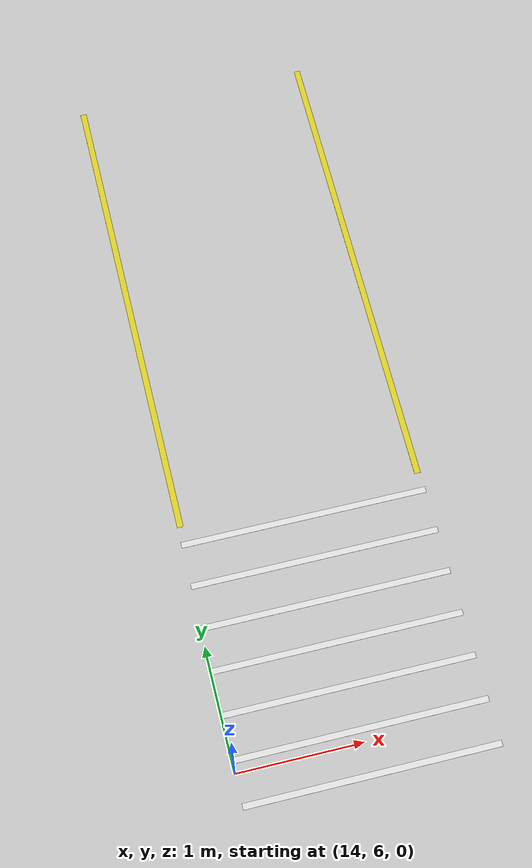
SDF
<sdf version="1.6">
 <world name="default">
  <model name="ground_plane">
   <static>1</static>
   <link name="link">
    <collision name="collision">
     <geometry><plane><normal>0 0 1</normal><size>100 100</size></plane></geometry>
     <surface><friction><ode><mu>100</mu><mu2>50</mu2></ode></friction></surface>
    </collision>
    <visual name="visual">
     <cast_shadows>0</cast_shadows>
     <geometry><plane><normal>0 0 1</normal><size>100 100</size></plane></geometry>
     <material>
      <script><uri>file://media/materials/scripts/gazebo.material</uri><name>Gazebo/Grey</name></script>
     </material>
    </visual>
   </link>
  </model>
  <model name="zebra_crossing_200cmx210cm">
   <link name="link_0">
    <inertial>
     <mass>1</mass>
     <inertia>
      <ixx>0.166667</ixx>
      <ixy>0</ixy>
      <ixz>0</ixz>
      <iyy>0.166667</iyy>
      <iyz>0</iyz>
      <izz>0.166667</izz>
     </inertia>
    </inertial>
    <visual name="ModelPreview_1::link_0::visual_6">
     <pose>-1.05 0 0 0 -0 0</pose>
     <geometry><box><size>0.05 2 0.001</size></box></geometry>
     <material>
      <lighting>1</lighting>
      <script><uri>file://media/materials/scripts/gazebo.material</uri><name>Gazebo/White</name></script>
     </material>
    </visual>
    <visual name="ModelPreview_1::link_0::visual_1">
     <pose>0.35 0 0 0 -0 0</pose>
     <geometry><box><size>0.05 2 0.001</size></box></geometry>
     <material>
      <lighting>1</lighting>
      <script><uri>file://media/materials/scripts/gazebo.material</uri><name>Gazebo/White</name></script>
     </material>
    </visual>
    <visual name="ModelPreview_1::link_0::visual_5">
     <pose>-0.7 0 0 0 -0 0</pose>
     <geometry><box><size>0.05 2 0.001</size></box></geometry>
     <material>
      <lighting>1</lighting>
      <script><uri>file://media/materials/scripts/gazebo.material</uri><name>Gazebo/White</name></script>
     </material>
    </visual>
    <visual name="ModelPreview_1::link_0::visual_3">
     <pose>1.05 0 0 0 -0 0</pose>
     <geometry><box><size>0.05 2 0.001</size></box></geometry>
     <material>
      <lighting>1</lighting>
      <script><uri>file://media/materials/scripts/gazebo.material</uri><name>Gazebo/White</name></script>
     </material>
    </visual>
    <visual name="ModelPreview_1::link_0::visual_2">
     <pose>0.7 0 0 0 -0 0</pose>
     <geometry><box><size>0.05 2 0.001</size></box></geometry>
     <material>
      <lighting>1</lighting>
      <script><uri>file://media/materials/scripts/gazebo.material</uri><name>Gazebo/White</name></script>
     </material>
    </visual>
    <visual name="visual">
     <geometry><box><size>0.05 2 0.001</size></box></geometry>
     <material>
      <lighting>1</lighting>
      <script><uri>file://media/materials/scripts/gazebo.material</uri><name>Gazebo/White</name></script>
     </material>
    </visual>
    <visual name="ModelPreview_1::link_0::visual_4">
     <pose>-0.35 0 0 0 -0 0</pose>
     <geometry><box><size>0.05 2 0.001</size></box></geometry>
     <material>
      <lighting>1</lighting>
      <script><uri>file://media/materials/scripts/gazebo.material</uri><name>Gazebo/White</name></script>
     </material>
    </visual>
    <collision name="collision_2">
     <pose>0.7 0 0 0 -0 0</pose>
     <geometry><box><size>0.05 2 1e-05</size></box></geometry>
     <surface>
      <friction>
       <ode><mu>1</mu><mu2>1</mu2><fdir1>0 0 0</fdir1><slip1>0</slip1><slip2>0</slip2></ode>
       <torsional>
        <coefficient>1</coefficient>
        <patch_radius>0</patch_radius>
        <surface_radius>0</surface_radius>
        <use_patch_radius>1</use_patch_radius>
        <ode><slip>0</slip></ode>
       </torsional>
      </friction>
      <bounce><restitution_coefficient>0</restitution_coefficient><threshold>1e+06</threshold></bounce>
      <contact>
       <collide_without_contact>0</collide_without_contact>
       <collide_without_contact_bitmask>1</collide_without_contact_bitmask>
       <collide_bitmask>1</collide_bitmask>
       <ode>
        <soft_cfm>0</soft_cfm>
        <soft_erp>0.2</soft_erp>
        <kp>1e+13</kp>
        <kd>1</kd>
        <max_vel>0.01</max_vel>
        <min_depth>0</min_depth>
       </ode>
       <bullet>
        <split_impulse>1</split_impulse>
        <split_impulse_penetration_threshold>-0.01</split_impulse_penetration_threshold>
        <soft_cfm>0</soft_cfm>
        <soft_erp>0.2</soft_erp>
        <kp>1e+13</kp>
        <kd>1</kd>
       </bullet>
      </contact>
     </surface>
    </collision>
    <collision name="collision_4">
     <pose>-0.35 0 0 0 -0 0</pose>
     <geometry><box><size>0.05 2 1e-05</size></box></geometry>
     <surface>
      <friction>
       <ode><mu>1</mu><mu2>1</mu2><fdir1>0 0 0</fdir1><slip1>0</slip1><slip2>0</slip2></ode>
       <torsional>
        <coefficient>1</coefficient>
        <patch_radius>0</patch_radius>
        <surface_radius>0</surface_radius>
        <use_patch_radius>1</use_patch_radius>
        <ode><slip>0</slip></ode>
       </torsional>
      </friction>
      <bounce><restitution_coefficient>0</restitution_coefficient><threshold>1e+06</threshold></bounce>
      <contact>
       <collide_without_contact>0</collide_without_contact>
       <collide_without_contact_bitmask>1</collide_without_contact_bitmask>
       <collide_bitmask>1</collide_bitmask>
       <ode>
        <soft_cfm>0</soft_cfm>
        <soft_erp>0.2</soft_erp>
        <kp>1e+13</kp>
        <kd>1</kd>
        <max_vel>0.01</max_vel>
        <min_depth>0</min_depth>
       </ode>
       <bullet>
        <split_impulse>1</split_impulse>
        <split_impulse_penetration_threshold>-0.01</split_impulse_penetration_threshold>
        <soft_cfm>0</soft_cfm>
        <soft_erp>0.2</soft_erp>
        <kp>1e+13</kp>
        <kd>1</kd>
       </bullet>
      </contact>
     </surface>
    </collision>
    <collision name="collision">
     <geometry><box><size>0.05 2 1e-05</size></box></geometry>
     <surface>
      <friction>
       <ode><mu>1</mu><mu2>1</mu2><fdir1>0 0 0</fdir1><slip1>0</slip1><slip2>0</slip2></ode>
       <torsional>
        <coefficient>1</coefficient>
        <patch_radius>0</patch_radius>
        <surface_radius>0</surface_radius>
        <use_patch_radius>1</use_patch_radius>
        <ode><slip>0</slip></ode>
       </torsional>
      </friction>
      <bounce><restitution_coefficient>0</restitution_coefficient><threshold>1e+06</threshold></bounce>
      <contact>
       <collide_without_contact>0</collide_without_contact>
       <collide_without_contact_bitmask>1</collide_without_contact_bitmask>
       <collide_bitmask>1</collide_bitmask>
       <ode>
        <soft_cfm>0</soft_cfm>
        <soft_erp>0.2</soft_erp>
        <kp>1e+13</kp>
        <kd>1</kd>
        <max_vel>0.01</max_vel>
        <min_depth>0</min_depth>
       </ode>
       <bullet>
        <split_impulse>1</split_impulse>
        <split_impulse_penetration_threshold>-0.01</split_impulse_penetration_threshold>
        <soft_cfm>0</soft_cfm>
        <soft_erp>0.2</soft_erp>
        <kp>1e+13</kp>
        <kd>1</kd>
       </bullet>
      </contact>
     </surface>
    </collision>
    <collision name="collision_5">
     <pose>-0.7 0 0 0 -0 0</pose>
     <geometry><box><size>0.05 2 1e-05</size></box></geometry>
     <surface>
      <friction>
       <ode><mu>1</mu><mu2>1</mu2><fdir1>0 0 0</fdir1><slip1>0</slip1><slip2>0</slip2></ode>
       <torsional>
        <coefficient>1</coefficient>
        <patch_radius>0</patch_radius>
        <surface_radius>0</surface_radius>
        <use_patch_radius>1</use_patch_radius>
        <ode><slip>0</slip></ode>
       </torsional>
      </friction>
      <bounce><restitution_coefficient>0</restitution_coefficient><threshold>1e+06</threshold></bounce>
      <contact>
       <collide_without_contact>0</collide_without_contact>
       <collide_without_contact_bitmask>1</collide_without_contact_bitmask>
       <collide_bitmask>1</collide_bitmask>
       <ode>
        <soft_cfm>0</soft_cfm>
        <soft_erp>0.2</soft_erp>
        <kp>1e+13</kp>
        <kd>1</kd>
        <max_vel>0.01</max_vel>
        <min_depth>0</min_depth>
       </ode>
       <bullet>
        <split_impulse>1</split_impulse>
        <split_impulse_penetration_threshold>-0.01</split_impulse_penetration_threshold>
        <soft_cfm>0</soft_cfm>
        <soft_erp>0.2</soft_erp>
        <kp>1e+13</kp>
        <kd>1</kd>
       </bullet>
      </contact>
     </surface>
    </collision>
    <collision name="collision_1">
     <pose>0.35 0 0 0 -0 0</pose>
     <geometry><box><size>0.05 2 1e-05</size></box></geometry>
     <surface>
      <friction>
       <ode><mu>1</mu><mu2>1</mu2><fdir1>0 0 0</fdir1><slip1>0</slip1><slip2>0</slip2></ode>
       <torsional>
        <coefficient>1</coefficient>
        <patch_radius>0</patch_radius>
        <surface_radius>0</surface_radius>
        <use_patch_radius>1</use_patch_radius>
        <ode><slip>0</slip></ode>
       </torsional>
      </friction>
      <bounce><restitution_coefficient>0</restitution_coefficient><threshold>1e+06</threshold></bounce>
      <contact>
       <collide_without_contact>0</collide_without_contact>
       <collide_without_contact_bitmask>1</collide_without_contact_bitmask>
       <collide_bitmask>1</collide_bitmask>
       <ode>
        <soft_cfm>0</soft_cfm>
        <soft_erp>0.2</soft_erp>
        <kp>1e+13</kp>
        <kd>1</kd>
        <max_vel>0.01</max_vel>
        <min_depth>0</min_depth>
       </ode>
       <bullet>
        <split_impulse>1</split_impulse>
        <split_impulse_penetration_threshold>-0.01</split_impulse_penetration_threshold>
        <soft_cfm>0</soft_cfm>
        <soft_erp>0.2</soft_erp>
        <kp>1e+13</kp>
        <kd>1</kd>
       </bullet>
      </contact>
     </surface>
    </collision>
    <collision name="collision_3">
     <pose>1.05 0 0 0 -0 0</pose>
     <geometry><box><size>0.05 2 1e-05</size></box></geometry>
     <surface>
      <friction>
       <ode><mu>1</mu><mu2>1</mu2><fdir1>0 0 0</fdir1><slip1>0</slip1><slip2>0</slip2></ode>
       <torsional>
        <coefficient>1</coefficient>
        <patch_radius>0</patch_radius>
        <surface_radius>0</surface_radius>
        <use_patch_radius>1</use_patch_radius>
        <ode><slip>0</slip></ode>
       </torsional>
      </friction>
      <bounce><restitution_coefficient>0</restitution_coefficient><threshold>1e+06</threshold></bounce>
      <contact>
       <collide_without_contact>0</collide_without_contact>
       <collide_without_contact_bitmask>1</collide_without_contact_bitmask>
       <collide_bitmask>1</collide_bitmask>
       <ode>
        <soft_cfm>0</soft_cfm>
        <soft_erp>0.2</soft_erp>
        <kp>1e+13</kp>
        <kd>1</kd>
        <max_vel>0.01</max_vel>
        <min_depth>0</min_depth>
       </ode>
       <bullet>
        <split_impulse>1</split_impulse>
        <split_impulse_penetration_threshold>-0.01</split_impulse_penetration_threshold>
        <soft_cfm>0</soft_cfm>
        <soft_erp>0.2</soft_erp>
        <kp>1e+13</kp>
        <kd>1</kd>
       </bullet>
      </contact>
     </surface>
    </collision>
    <collision name="collision_6">
     <pose>-1.05 0 0 0 -0 0</pose>
     <geometry><box><size>0.05 2 1e-05</size></box></geometry>
     <surface>
      <friction>
       <ode><mu>1</mu><mu2>1</mu2><fdir1>0 0 0</fdir1><slip1>0</slip1><slip2>0</slip2></ode>
       <torsional>
        <coefficient>1</coefficient>
        <patch_radius>0</patch_radius>
        <surface_radius>0</surface_radius>
        <use_patch_radius>1</use_patch_radius>
        <ode><slip>0</slip></ode>
       </torsional>
      </friction>
      <bounce><restitution_coefficient>0</restitution_coefficient><threshold>1e+06</threshold></bounce>
      <contact>
       <collide_without_contact>0</collide_without_contact>
       <collide_without_contact_bitmask>1</collide_without_contact_bitmask>
       <collide_bitmask>1</collide_bitmask>
       <ode>
        <soft_cfm>0</soft_cfm>
        <soft_erp>0.2</soft_erp>
        <kp>1e+13</kp>
        <kd>1</kd>
        <max_vel>0.01</max_vel>
        <min_depth>0</min_depth>
       </ode>
       <bullet>
        <split_impulse>1</split_impulse>
        <split_impulse_penetration_threshold>-0.01</split_impulse_penetration_threshold>
        <soft_cfm>0</soft_cfm>
        <soft_erp>0.2</soft_erp>
        <kp>1e+13</kp>
        <kd>1</kd>
       </bullet>
      </contact>
     </surface>
    </collision>
   </link>
   <static>1</static>
   <pose>15 6.8 0 0 -0 1.5708</pose>
  </model>
  <model name="line4m_0">
   <link name="link_3">
    <inertial>
     <mass>1</mass>
     <inertia>
      <ixx>0.166667</ixx>
      <ixy>0</ixy>
      <ixz>0</ixz>
      <iyy>0.166667</iyy>
      <iyz>0</iyz>
      <izz>0.166667</izz>
     </inertia>
    </inertial>
    <visual name="visual">
     <geometry><box><size>0.05 4 0.001</size></box></geometry>
     <material>
      <lighting>1</lighting>
      <script><uri>file://media/materials/scripts/gazebo.material</uri><name>Gazebo/Yellow</name></script>
     </material>
    </visual>
    <collision name="collision">
     <geometry><box><size>0.05 4 1e-06</size></box></geometry>
     <surface>
      <friction>
       <ode><mu>1</mu><mu2>1</mu2><fdir1>0 0 0</fdir1><slip1>0</slip1><slip2>0</slip2></ode>
       <torsional>
        <coefficient>1</coefficient>
        <patch_radius>0</patch_radius>
        <surface_radius>0</surface_radius>
        <use_patch_radius>1</use_patch_radius>
        <ode><slip>0</slip></ode>
       </torsional>
      </friction>
      <bounce><restitution_coefficient>0</restitution_coefficient><threshold>1e+06</threshold></bounce>
      <contact>
       <collide_without_contact>0</collide_without_contact>
       <collide_without_contact_bitmask>1</collide_without_contact_bitmask>
       <collide_bitmask>1</collide_bitmask>
       <ode>
        <soft_cfm>0</soft_cfm>
        <soft_erp>0.2</soft_erp>
        <kp>1e+13</kp>
        <kd>1</kd>
        <max_vel>0.01</max_vel>
        <min_depth>0</min_depth>
       </ode>
       <bullet>
        <split_impulse>1</split_impulse>
        <split_impulse_penetration_threshold>-0.01</split_impulse_penetration_threshold>
        <soft_cfm>0</soft_cfm>
        <soft_erp>0.2</soft_erp>
        <kp>1e+13</kp>
        <kd>1</kd>
       </bullet>
      </contact>
     </surface>
    </collision>
   </link>
   <static>1</static>
   <pose>15.975 10 0 0 -0 0</pose>
  </model>
  <model name="line4m_1">
   <link name="link_3">
    <inertial>
     <mass>1</mass>
     <inertia>
      <ixx>0.166667</ixx>
      <ixy>0</ixy>
      <ixz>0</ixz>
      <iyy>0.166667</iyy>
      <iyz>0</iyz>
      <izz>0.166667</izz>
     </inertia>
    </inertial>
    <visual name="visual">
     <geometry><box><size>0.05 4 0.001</size></box></geometry>
     <material>
      <lighting>1</lighting>
      <script><uri>file://media/materials/scripts/gazebo.material</uri><name>Gazebo/Yellow</name></script>
     </material>
    </visual>
    <collision name="collision">
     <geometry><box><size>0.05 4 1e-06</size></box></geometry>
     <surface>
      <friction>
       <ode><mu>1</mu><mu2>1</mu2><fdir1>0 0 0</fdir1><slip1>0</slip1><slip2>0</slip2></ode>
       <torsional>
        <coefficient>1</coefficient>
        <patch_radius>0</patch_radius>
        <surface_radius>0</surface_radius>
        <use_patch_radius>1</use_patch_radius>
        <ode><slip>0</slip></ode>
       </torsional>
      </friction>
      <bounce><restitution_coefficient>0</restitution_coefficient><threshold>1e+06</threshold></bounce>
      <contact>
       <collide_without_contact>0</collide_without_contact>
       <collide_without_contact_bitmask>1</collide_without_contact_bitmask>
       <collide_bitmask>1</collide_bitmask>
       <ode>
        <soft_cfm>0</soft_cfm>
        <soft_erp>0.2</soft_erp>
        <kp>1e+13</kp>
        <kd>1</kd>
        <max_vel>0.01</max_vel>
        <min_depth>0</min_depth>
       </ode>
       <bullet>
        <split_impulse>1</split_impulse>
        <split_impulse_penetration_threshold>-0.01</split_impulse_penetration_threshold>
        <soft_cfm>0</soft_cfm>
        <soft_erp>0.2</soft_erp>
        <kp>1e+13</kp>
        <kd>1</kd>
       </bullet>
      </contact>
     </surface>
    </collision>
   </link>
   <static>1</static>
   <pose>14.025 10 0 0 -0 0</pose>
  </model>
 </world>
</sdf>
